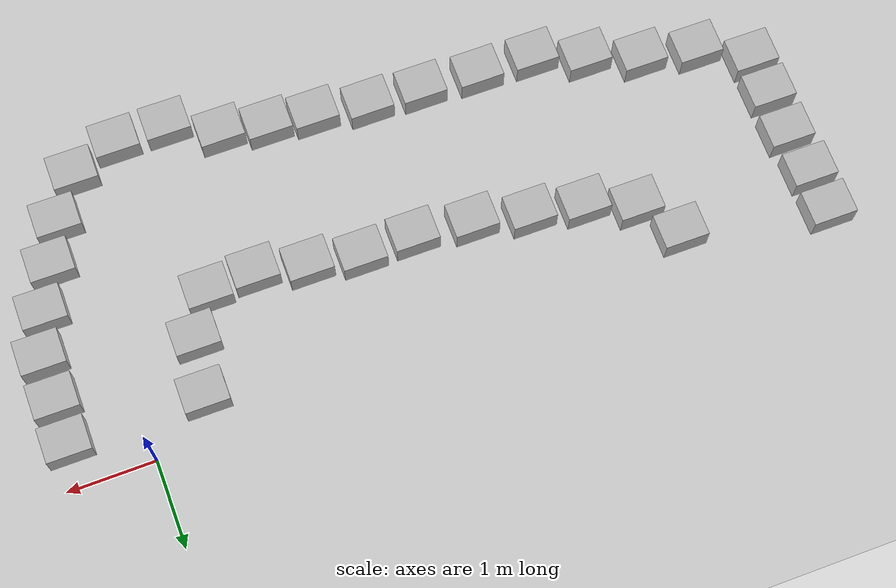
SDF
<sdf version="1.10">
 <world name="empty">
  <model name="ground_plane">
   <static>true</static>
   <link name="link">
    <collision name="collision">
     <geometry><plane><normal>0 0 1</normal><size>100 100</size></plane></geometry>
    </collision>
    <visual name="visual">
     <geometry><plane><normal>0 0 1</normal><size>100 100</size></plane></geometry>
     <material>
      <ambient>0.800000012 0.800000012 0.800000012 1</ambient>
      <diffuse>0.800000012 0.800000012 0.800000012 1</diffuse>
      <specular>0.800000012 0.800000012 0.800000012 1</specular>
     </material>
    </visual>
    <inertial>
     <mass>1</mass>
     <inertia><ixx>1</ixx><ixy>0</ixy><ixz>0</ixz><iyy>1</iyy><iyz>0</iyz><izz>1</izz></inertia>
    </inertial>
   </link>
  </model>
  <model name="cardboard_box_2">
   <pose>0.82918823358013261 -0.48284581720282427 0.14999943526777965 1.468051330599653e-18 -4.7075442468869343e-19 -1.1483520386083747e-20</pose>
   <link name="link">
    <inertial>
     <mass>2</mass>
     <inertia>
      <ixx>0.041666666999999998</ixx>
      <ixy>0</ixy>
      <ixz>0</ixz>
      <iyy>0.056666666999999997</iyy>
      <iyz>0</iyz>
      <izz>0.068333332999999996</izz>
     </inertia>
    </inertial>
    <collision name="collision">
     <geometry><box><size>0.5 0.40000000000000002 0.29999999999999999</size></box></geometry>
     <surface>
      <friction><ode><mu>1</mu><mu2>1</mu2></ode></friction>
      <contact>
       <ode><kp>10000000</kp><kd>1</kd><min_depth>0.001</min_depth><max_vel>0.10000000000000001</max_vel></ode>
      </contact>
     </surface>
    </collision>
    <visual name="visual">
     <pose>0 0 -0.14999999999999999 0 0 0</pose>
     <geometry>
      <mesh>
       <uri>file:///home/szu/slash_ws/src/slash_sim/gz_models/cardboard_box/model://cardboard_box/meshes/cardboard_box.dae</uri>
       <scale>1.2593189600000001 1.0074551679999999 0.75559137600000004</scale>
      </mesh>
     </geometry>
    </visual>
   </link>
   <static>false</static>
  </model>
  <model name="cardboard_box_1">
   <pose>0.81471989938882383 -0.97593307698761844 0.14999900262897667 -2.4340092493284308e-19 6.9279252550571232e-19 1.2027156982183783e-19</pose>
   <link name="link">
    <inertial>
     <mass>2</mass>
     <inertia>
      <ixx>0.041666666999999998</ixx>
      <ixy>0</ixy>
      <ixz>0</ixz>
      <iyy>0.056666666999999997</iyy>
      <iyz>0</iyz>
      <izz>0.068333332999999996</izz>
     </inertia>
    </inertial>
    <collision name="collision">
     <geometry><box><size>0.5 0.40000000000000002 0.29999999999999999</size></box></geometry>
     <surface>
      <friction><ode><mu>1</mu><mu2>1</mu2></ode></friction>
      <contact>
       <ode><kp>10000000</kp><kd>1</kd><min_depth>0.001</min_depth><max_vel>0.10000000000000001</max_vel></ode>
      </contact>
     </surface>
    </collision>
    <visual name="visual">
     <pose>0 0 -0.14999999999999999 0 0 0</pose>
     <geometry>
      <mesh>
       <uri>file:///home/szu/slash_ws/src/slash_sim/gz_models/cardboard_box/model://cardboard_box/meshes/cardboard_box.dae</uri>
       <scale>1.2593189600000001 1.0074551679999999 0.75559137600000004</scale>
      </mesh>
     </geometry>
    </visual>
   </link>
   <static>false</static>
  </model>
  <model name="cardboard_box_3">
   <pose>0.80992011127847019 -1.4853921208673166 0.14999900262897667 -2.4340092493284308e-19 6.9279252550571232e-19 1.2027156982183783e-19</pose>
   <link name="link">
    <inertial>
     <mass>2</mass>
     <inertia>
      <ixx>0.041666666999999998</ixx>
      <ixy>0</ixy>
      <ixz>0</ixz>
      <iyy>0.056666666999999997</iyy>
      <iyz>0</iyz>
      <izz>0.068333332999999996</izz>
     </inertia>
    </inertial>
    <collision name="collision">
     <geometry><box><size>0.5 0.40000000000000002 0.29999999999999999</size></box></geometry>
     <surface>
      <friction><ode><mu>1</mu><mu2>1</mu2></ode></friction>
      <contact>
       <ode><kp>10000000</kp><kd>1</kd><min_depth>0.001</min_depth><max_vel>0.10000000000000001</max_vel></ode>
      </contact>
     </surface>
    </collision>
    <visual name="visual">
     <pose>0 0 -0.14999999999999999 0 0 0</pose>
     <geometry>
      <mesh>
       <uri>file:///home/szu/slash_ws/src/slash_sim/gz_models/cardboard_box/model://cardboard_box/meshes/cardboard_box.dae</uri>
       <scale>1.2593189600000001 1.0074551679999999 0.75559137600000004</scale>
      </mesh>
     </geometry>
    </visual>
   </link>
   <static>false</static>
  </model>
  <model name="cardboard_box_4">
   <pose>0.65241971092314321 -1.9664045753572796 0.14999900262897667 -2.4340092493284308e-19 6.9279252550571232e-19 1.2027156982183783e-19</pose>
   <link name="link">
    <inertial>
     <mass>2</mass>
     <inertia>
      <ixx>0.041666666999999998</ixx>
      <ixy>0</ixy>
      <ixz>0</ixz>
      <iyy>0.056666666999999997</iyy>
      <iyz>0</iyz>
      <izz>0.068333332999999996</izz>
     </inertia>
    </inertial>
    <collision name="collision">
     <geometry><box><size>0.5 0.40000000000000002 0.29999999999999999</size></box></geometry>
     <surface>
      <friction><ode><mu>1</mu><mu2>1</mu2></ode></friction>
      <contact>
       <ode><kp>10000000</kp><kd>1</kd><min_depth>0.001</min_depth><max_vel>0.10000000000000001</max_vel></ode>
      </contact>
     </surface>
    </collision>
    <visual name="visual">
     <pose>0 0 -0.14999999999999999 0 0 0</pose>
     <geometry>
      <mesh>
       <uri>file:///home/szu/slash_ws/src/slash_sim/gz_models/cardboard_box/model://cardboard_box/meshes/cardboard_box.dae</uri>
       <scale>1.2593189600000001 1.0074551679999999 0.75559137600000004</scale>
      </mesh>
     </geometry>
    </visual>
   </link>
   <static>false</static>
  </model>
  <model name="cardboard_box_5">
   <pose>0.42300615484042769 -2.4551073116075139 0.14999900262897667 -2.3882218747492828e-19 7.0060126461846494e-19 1.2009065340730555e-19</pose>
   <link name="link">
    <inertial>
     <mass>2</mass>
     <inertia>
      <ixx>0.041666666999999998</ixx>
      <ixy>0</ixy>
      <ixz>0</ixz>
      <iyy>0.056666666999999997</iyy>
      <iyz>0</iyz>
      <izz>0.068333332999999996</izz>
     </inertia>
    </inertial>
    <collision name="collision">
     <geometry><box><size>0.5 0.40000000000000002 0.29999999999999999</size></box></geometry>
     <surface>
      <friction><ode><mu>1</mu><mu2>1</mu2></ode></friction>
      <contact>
       <ode><kp>10000000</kp><kd>1</kd><min_depth>0.001</min_depth><max_vel>0.10000000000000001</max_vel></ode>
      </contact>
     </surface>
    </collision>
    <visual name="visual">
     <pose>0 0 -0.14999999999999999 0 0 0</pose>
     <geometry>
      <mesh>
       <uri>file:///home/szu/slash_ws/src/slash_sim/gz_models/cardboard_box/model://cardboard_box/meshes/cardboard_box.dae</uri>
       <scale>1.2593189600000001 1.0074551679999999 0.75559137600000004</scale>
      </mesh>
     </geometry>
    </visual>
   </link>
   <static>false</static>
  </model>
  <model name="cardboard_box_6">
   <pose>0.21282287062685212 -2.925903574118673 0.14999900262897667 -2.3882218747492828e-19 7.0060126461846494e-19 1.2009065340730555e-19</pose>
   <link name="link">
    <inertial>
     <mass>2</mass>
     <inertia>
      <ixx>0.041666666999999998</ixx>
      <ixy>0</ixy>
      <ixz>0</ixz>
      <iyy>0.056666666999999997</iyy>
      <iyz>0</iyz>
      <izz>0.068333332999999996</izz>
     </inertia>
    </inertial>
    <collision name="collision">
     <geometry><box><size>0.5 0.40000000000000002 0.29999999999999999</size></box></geometry>
     <surface>
      <friction><ode><mu>1</mu><mu2>1</mu2></ode></friction>
      <contact>
       <ode><kp>10000000</kp><kd>1</kd><min_depth>0.001</min_depth><max_vel>0.10000000000000001</max_vel></ode>
      </contact>
     </surface>
    </collision>
    <visual name="visual">
     <pose>0 0 -0.14999999999999999 0 0 0</pose>
     <geometry>
      <mesh>
       <uri>file:///home/szu/slash_ws/src/slash_sim/gz_models/cardboard_box/model://cardboard_box/meshes/cardboard_box.dae</uri>
       <scale>1.2593189600000001 1.0074551679999999 0.75559137600000004</scale>
      </mesh>
     </geometry>
    </visual>
   </link>
   <static>false</static>
  </model>
  <model name="cardboard_box_7">
   <pose>-0.11863343668581763 -3.3982007797930551 0.14999900262897667 -2.4848020336017288e-19 6.8408961370786333e-19 1.2063749059190658e-19</pose>
   <link name="link">
    <inertial>
     <mass>2</mass>
     <inertia>
      <ixx>0.041666666999999998</ixx>
      <ixy>0</ixy>
      <ixz>0</ixz>
      <iyy>0.056666666999999997</iyy>
      <iyz>0</iyz>
      <izz>0.068333332999999996</izz>
     </inertia>
    </inertial>
    <collision name="collision">
     <geometry><box><size>0.5 0.40000000000000002 0.29999999999999999</size></box></geometry>
     <surface>
      <friction><ode><mu>1</mu><mu2>1</mu2></ode></friction>
      <contact>
       <ode><kp>10000000</kp><kd>1</kd><min_depth>0.001</min_depth><max_vel>0.10000000000000001</max_vel></ode>
      </contact>
     </surface>
    </collision>
    <visual name="visual">
     <pose>0 0 -0.14999999999999999 0 0 0</pose>
     <geometry>
      <mesh>
       <uri>file:///home/szu/slash_ws/src/slash_sim/gz_models/cardboard_box/model://cardboard_box/meshes/cardboard_box.dae</uri>
       <scale>1.2593189600000001 1.0074551679999999 0.75559137600000004</scale>
      </mesh>
     </geometry>
    </visual>
   </link>
   <static>false</static>
  </model>
  <model name="cardboard_box_8">
   <pose>-0.65943831398405628 -3.6029109999164235 0.14999900262897667 -2.3882218747492828e-19 7.0060126461846494e-19 1.2009065340730555e-19</pose>
   <link name="link">
    <inertial>
     <mass>2</mass>
     <inertia>
      <ixx>0.041666666999999998</ixx>
      <ixy>0</ixy>
      <ixz>0</ixz>
      <iyy>0.056666666999999997</iyy>
      <iyz>0</iyz>
      <izz>0.068333332999999996</izz>
     </inertia>
    </inertial>
    <collision name="collision">
     <geometry><box><size>0.5 0.40000000000000002 0.29999999999999999</size></box></geometry>
     <surface>
      <friction><ode><mu>1</mu><mu2>1</mu2></ode></friction>
      <contact>
       <ode><kp>10000000</kp><kd>1</kd><min_depth>0.001</min_depth><max_vel>0.10000000000000001</max_vel></ode>
      </contact>
     </surface>
    </collision>
    <visual name="visual">
     <pose>0 0 -0.14999999999999999 0 0 0</pose>
     <geometry>
      <mesh>
       <uri>file:///home/szu/slash_ws/src/slash_sim/gz_models/cardboard_box/model://cardboard_box/meshes/cardboard_box.dae</uri>
       <scale>1.2593189600000001 1.0074551679999999 0.75559137600000004</scale>
      </mesh>
     </geometry>
    </visual>
   </link>
   <static>false</static>
  </model>
  <model name="cardboard_box_9">
   <pose>-1.2508540111511406 -3.6073572218996501 0.14999900262897667 -2.3882218747492828e-19 7.0060126461846494e-19 1.2009065340730555e-19</pose>
   <link name="link">
    <inertial>
     <mass>2</mass>
     <inertia>
      <ixx>0.041666666999999998</ixx>
      <ixy>0</ixy>
      <ixz>0</ixz>
      <iyy>0.056666666999999997</iyy>
      <iyz>0</iyz>
      <izz>0.068333332999999996</izz>
     </inertia>
    </inertial>
    <collision name="collision">
     <geometry><box><size>0.5 0.40000000000000002 0.29999999999999999</size></box></geometry>
     <surface>
      <friction><ode><mu>1</mu><mu2>1</mu2></ode></friction>
      <contact>
       <ode><kp>10000000</kp><kd>1</kd><min_depth>0.001</min_depth><max_vel>0.10000000000000001</max_vel></ode>
      </contact>
     </surface>
    </collision>
    <visual name="visual">
     <pose>0 0 -0.14999999999999999 0 0 0</pose>
     <geometry>
      <mesh>
       <uri>file:///home/szu/slash_ws/src/slash_sim/gz_models/cardboard_box/model://cardboard_box/meshes/cardboard_box.dae</uri>
       <scale>1.2593189600000001 1.0074551679999999 0.75559137600000004</scale>
      </mesh>
     </geometry>
    </visual>
   </link>
   <static>false</static>
  </model>
  <model name="cardboard_box_10">
   <pose>-1.7887590245711507 -3.3225877841246536 0.14999900262897667 -2.3882218747492828e-19 7.0060126461846494e-19 1.2009065340730555e-19</pose>
   <link name="link">
    <inertial>
     <mass>2</mass>
     <inertia>
      <ixx>0.041666666999999998</ixx>
      <ixy>0</ixy>
      <ixz>0</ixz>
      <iyy>0.056666666999999997</iyy>
      <iyz>0</iyz>
      <izz>0.068333332999999996</izz>
     </inertia>
    </inertial>
    <collision name="collision">
     <geometry><box><size>0.5 0.40000000000000002 0.29999999999999999</size></box></geometry>
     <surface>
      <friction><ode><mu>1</mu><mu2>1</mu2></ode></friction>
      <contact>
       <ode><kp>10000000</kp><kd>1</kd><min_depth>0.001</min_depth><max_vel>0.10000000000000001</max_vel></ode>
      </contact>
     </surface>
    </collision>
    <visual name="visual">
     <pose>0 0 -0.14999999999999999 0 0 0</pose>
     <geometry>
      <mesh>
       <uri>file:///home/szu/slash_ws/src/slash_sim/gz_models/cardboard_box/model://cardboard_box/meshes/cardboard_box.dae</uri>
       <scale>1.2593189600000001 1.0074551679999999 0.75559137600000004</scale>
      </mesh>
     </geometry>
    </visual>
   </link>
   <static>false</static>
  </model>
  <model name="cardboard_box_11">
   <pose>-2.3112200243576413 -3.2260066538424192 0.14999900262897667 -2.3882218747492828e-19 7.0060126461846494e-19 1.2009065340730555e-19</pose>
   <link name="link">
    <inertial>
     <mass>2</mass>
     <inertia>
      <ixx>0.041666666999999998</ixx>
      <ixy>0</ixy>
      <ixz>0</ixz>
      <iyy>0.056666666999999997</iyy>
      <iyz>0</iyz>
      <izz>0.068333332999999996</izz>
     </inertia>
    </inertial>
    <collision name="collision">
     <geometry><box><size>0.5 0.40000000000000002 0.29999999999999999</size></box></geometry>
     <surface>
      <friction><ode><mu>1</mu><mu2>1</mu2></ode></friction>
      <contact>
       <ode><kp>10000000</kp><kd>1</kd><min_depth>0.001</min_depth><max_vel>0.10000000000000001</max_vel></ode>
      </contact>
     </surface>
    </collision>
    <visual name="visual">
     <pose>0 0 -0.14999999999999999 0 0 0</pose>
     <geometry>
      <mesh>
       <uri>file:///home/szu/slash_ws/src/slash_sim/gz_models/cardboard_box/model://cardboard_box/meshes/cardboard_box.dae</uri>
       <scale>1.2593189600000001 1.0074551679999999 0.75559137600000004</scale>
      </mesh>
     </geometry>
    </visual>
   </link>
   <static>false</static>
  </model>
  <model name="cardboard_box_12">
   <pose>-2.8382995273990406 -3.1674697978062643 0.14999900262897667 -2.3882218747492828e-19 7.0060126461846494e-19 1.2009065340730555e-19</pose>
   <link name="link">
    <inertial>
     <mass>2</mass>
     <inertia>
      <ixx>0.041666666999999998</ixx>
      <ixy>0</ixy>
      <ixz>0</ixz>
      <iyy>0.056666666999999997</iyy>
      <iyz>0</iyz>
      <izz>0.068333332999999996</izz>
     </inertia>
    </inertial>
    <collision name="collision">
     <geometry><box><size>0.5 0.40000000000000002 0.29999999999999999</size></box></geometry>
     <surface>
      <friction><ode><mu>1</mu><mu2>1</mu2></ode></friction>
      <contact>
       <ode><kp>10000000</kp><kd>1</kd><min_depth>0.001</min_depth><max_vel>0.10000000000000001</max_vel></ode>
      </contact>
     </surface>
    </collision>
    <visual name="visual">
     <pose>0 0 -0.14999999999999999 0 0 0</pose>
     <geometry>
      <mesh>
       <uri>file:///home/szu/slash_ws/src/slash_sim/gz_models/cardboard_box/model://cardboard_box/meshes/cardboard_box.dae</uri>
       <scale>1.2593189600000001 1.0074551679999999 0.75559137600000004</scale>
      </mesh>
     </geometry>
    </visual>
   </link>
   <static>false</static>
  </model>
  <model name="cardboard_box_13">
   <pose>-3.4479739644392979 -3.0739339302603668 0.14999900262897667 -2.3882218747492828e-19 7.0060126461846494e-19 1.2009065340730555e-19</pose>
   <link name="link">
    <inertial>
     <mass>2</mass>
     <inertia>
      <ixx>0.041666666999999998</ixx>
      <ixy>0</ixy>
      <ixz>0</ixz>
      <iyy>0.056666666999999997</iyy>
      <iyz>0</iyz>
      <izz>0.068333332999999996</izz>
     </inertia>
    </inertial>
    <collision name="collision">
     <geometry><box><size>0.5 0.40000000000000002 0.29999999999999999</size></box></geometry>
     <surface>
      <friction><ode><mu>1</mu><mu2>1</mu2></ode></friction>
      <contact>
       <ode><kp>10000000</kp><kd>1</kd><min_depth>0.001</min_depth><max_vel>0.10000000000000001</max_vel></ode>
      </contact>
     </surface>
    </collision>
    <visual name="visual">
     <pose>0 0 -0.14999999999999999 0 0 0</pose>
     <geometry>
      <mesh>
       <uri>file:///home/szu/slash_ws/src/slash_sim/gz_models/cardboard_box/model://cardboard_box/meshes/cardboard_box.dae</uri>
       <scale>1.2593189600000001 1.0074551679999999 0.75559137600000004</scale>
      </mesh>
     </geometry>
    </visual>
   </link>
   <static>false</static>
  </model>
  <model name="cardboard_box_14">
   <pose>-4.0666289461102183 -3.0440014481805937 0.14999900262897667 -2.3882218747492828e-19 7.0060126461846494e-19 1.2009065340730555e-19</pose>
   <link name="link">
    <inertial>
     <mass>2</mass>
     <inertia>
      <ixx>0.041666666999999998</ixx>
      <ixy>0</ixy>
      <ixz>0</ixz>
      <iyy>0.056666666999999997</iyy>
      <iyz>0</iyz>
      <izz>0.068333332999999996</izz>
     </inertia>
    </inertial>
    <collision name="collision">
     <geometry><box><size>0.5 0.40000000000000002 0.29999999999999999</size></box></geometry>
     <surface>
      <friction><ode><mu>1</mu><mu2>1</mu2></ode></friction>
      <contact>
       <ode><kp>10000000</kp><kd>1</kd><min_depth>0.001</min_depth><max_vel>0.10000000000000001</max_vel></ode>
      </contact>
     </surface>
    </collision>
    <visual name="visual">
     <pose>0 0 -0.14999999999999999 0 0 0</pose>
     <geometry>
      <mesh>
       <uri>file:///home/szu/slash_ws/src/slash_sim/gz_models/cardboard_box/model://cardboard_box/meshes/cardboard_box.dae</uri>
       <scale>1.2593189600000001 1.0074551679999999 0.75559137600000004</scale>
      </mesh>
     </geometry>
    </visual>
   </link>
   <static>false</static>
  </model>
  <model name="cardboard_box_15">
   <pose>-4.7268743832117153 -3.0079390506296462 0.14999900262897667 -2.3882218747492828e-19 7.0060126461846494e-19 1.2009065340730555e-19</pose>
   <link name="link">
    <inertial>
     <mass>2</mass>
     <inertia>
      <ixx>0.041666666999999998</ixx>
      <ixy>0</ixy>
      <ixz>0</ixz>
      <iyy>0.056666666999999997</iyy>
      <iyz>0</iyz>
      <izz>0.068333332999999996</izz>
     </inertia>
    </inertial>
    <collision name="collision">
     <geometry><box><size>0.5 0.40000000000000002 0.29999999999999999</size></box></geometry>
     <surface>
      <friction><ode><mu>1</mu><mu2>1</mu2></ode></friction>
      <contact>
       <ode><kp>10000000</kp><kd>1</kd><min_depth>0.001</min_depth><max_vel>0.10000000000000001</max_vel></ode>
      </contact>
     </surface>
    </collision>
    <visual name="visual">
     <pose>0 0 -0.14999999999999999 0 0 0</pose>
     <geometry>
      <mesh>
       <uri>file:///home/szu/slash_ws/src/slash_sim/gz_models/cardboard_box/model://cardboard_box/meshes/cardboard_box.dae</uri>
       <scale>1.2593189600000001 1.0074551679999999 0.75559137600000004</scale>
      </mesh>
     </geometry>
    </visual>
   </link>
   <static>false</static>
  </model>
  <model name="cardboard_box_16">
   <pose>-5.3803726022670695 -2.9915414197180037 0.14999900262897667 -2.3882218747492828e-19 7.0060126461846494e-19 1.2009065340730555e-19</pose>
   <link name="link">
    <inertial>
     <mass>2</mass>
     <inertia>
      <ixx>0.041666666999999998</ixx>
      <ixy>0</ixy>
      <ixz>0</ixz>
      <iyy>0.056666666999999997</iyy>
      <iyz>0</iyz>
      <izz>0.068333332999999996</izz>
     </inertia>
    </inertial>
    <collision name="collision">
     <geometry><box><size>0.5 0.40000000000000002 0.29999999999999999</size></box></geometry>
     <surface>
      <friction><ode><mu>1</mu><mu2>1</mu2></ode></friction>
      <contact>
       <ode><kp>10000000</kp><kd>1</kd><min_depth>0.001</min_depth><max_vel>0.10000000000000001</max_vel></ode>
      </contact>
     </surface>
    </collision>
    <visual name="visual">
     <pose>0 0 -0.14999999999999999 0 0 0</pose>
     <geometry>
      <mesh>
       <uri>file:///home/szu/slash_ws/src/slash_sim/gz_models/cardboard_box/model://cardboard_box/meshes/cardboard_box.dae</uri>
       <scale>1.2593189600000001 1.0074551679999999 0.75559137600000004</scale>
      </mesh>
     </geometry>
    </visual>
   </link>
   <static>false</static>
  </model>
  <model name="cardboard_box_17">
   <pose>-5.9379788822694248 -2.779304179914567 0.14999900262897667 -2.3882218747492828e-19 7.0060126461846494e-19 1.2009065340730555e-19</pose>
   <link name="link">
    <inertial>
     <mass>2</mass>
     <inertia>
      <ixx>0.041666666999999998</ixx>
      <ixy>0</ixy>
      <ixz>0</ixz>
      <iyy>0.056666666999999997</iyy>
      <iyz>0</iyz>
      <izz>0.068333332999999996</izz>
     </inertia>
    </inertial>
    <collision name="collision">
     <geometry><box><size>0.5 0.40000000000000002 0.29999999999999999</size></box></geometry>
     <surface>
      <friction><ode><mu>1</mu><mu2>1</mu2></ode></friction>
      <contact>
       <ode><kp>10000000</kp><kd>1</kd><min_depth>0.001</min_depth><max_vel>0.10000000000000001</max_vel></ode>
      </contact>
     </surface>
    </collision>
    <visual name="visual">
     <pose>0 0 -0.14999999999999999 0 0 0</pose>
     <geometry>
      <mesh>
       <uri>file:///home/szu/slash_ws/src/slash_sim/gz_models/cardboard_box/model://cardboard_box/meshes/cardboard_box.dae</uri>
       <scale>1.2593189600000001 1.0074551679999999 0.75559137600000004</scale>
      </mesh>
     </geometry>
    </visual>
   </link>
   <static>false</static>
  </model>
  <model name="cardboard_box_18">
   <pose>-6.5225413445512554 -2.5643485998146858 0.14999900262897667 -2.3882218747492828e-19 7.0060126461846494e-19 1.2009065340730555e-19</pose>
   <link name="link">
    <inertial>
     <mass>2</mass>
     <inertia>
      <ixx>0.041666666999999998</ixx>
      <ixy>0</ixy>
      <ixz>0</ixz>
      <iyy>0.056666666999999997</iyy>
      <iyz>0</iyz>
      <izz>0.068333332999999996</izz>
     </inertia>
    </inertial>
    <collision name="collision">
     <geometry><box><size>0.5 0.40000000000000002 0.29999999999999999</size></box></geometry>
     <surface>
      <friction><ode><mu>1</mu><mu2>1</mu2></ode></friction>
      <contact>
       <ode><kp>10000000</kp><kd>1</kd><min_depth>0.001</min_depth><max_vel>0.10000000000000001</max_vel></ode>
      </contact>
     </surface>
    </collision>
    <visual name="visual">
     <pose>0 0 -0.14999999999999999 0 0 0</pose>
     <geometry>
      <mesh>
       <uri>file:///home/szu/slash_ws/src/slash_sim/gz_models/cardboard_box/model://cardboard_box/meshes/cardboard_box.dae</uri>
       <scale>1.2593189600000001 1.0074551679999999 0.75559137600000004</scale>
      </mesh>
     </geometry>
    </visual>
   </link>
   <static>false</static>
  </model>
  <model name="cardboard_box_19">
   <pose>-7.1408973483773224 -2.4413015255535058 0.149999987441674 5.6848285000596318e-13 3.0140203723890403e-08 -4.5919229407915538e-06</pose>
   <link name="link">
    <inertial>
     <mass>2</mass>
     <inertia>
      <ixx>0.041666666999999998</ixx>
      <ixy>0</ixy>
      <ixz>0</ixz>
      <iyy>0.056666666999999997</iyy>
      <iyz>0</iyz>
      <izz>0.068333332999999996</izz>
     </inertia>
    </inertial>
    <collision name="collision">
     <geometry><box><size>0.5 0.40000000000000002 0.29999999999999999</size></box></geometry>
     <surface>
      <friction><ode><mu>1</mu><mu2>1</mu2></ode></friction>
      <contact>
       <ode><kp>10000000</kp><kd>1</kd><min_depth>0.001</min_depth><max_vel>0.10000000000000001</max_vel></ode>
      </contact>
     </surface>
    </collision>
    <visual name="visual">
     <pose>0 0 -0.14999999999999999 0 0 0</pose>
     <geometry>
      <mesh>
       <uri>file:///home/szu/slash_ws/src/slash_sim/gz_models/cardboard_box/model://cardboard_box/meshes/cardboard_box.dae</uri>
       <scale>1.2593189600000001 1.0074551679999999 0.75559137600000004</scale>
      </mesh>
     </geometry>
    </visual>
   </link>
   <static>false</static>
  </model>
  <model name="cardboard_box_21">
   <pose>-7.6931963475884668 -1.662565945218375 0.14999900262897667 -2.4340092493284308e-19 6.9279252550571232e-19 1.2027156982183783e-19</pose>
   <link name="link">
    <inertial>
     <mass>2</mass>
     <inertia>
      <ixx>0.041666666999999998</ixx>
      <ixy>0</ixy>
      <ixz>0</ixz>
      <iyy>0.056666666999999997</iyy>
      <iyz>0</iyz>
      <izz>0.068333332999999996</izz>
     </inertia>
    </inertial>
    <collision name="collision">
     <geometry><box><size>0.5 0.40000000000000002 0.29999999999999999</size></box></geometry>
     <surface>
      <friction><ode><mu>1</mu><mu2>1</mu2></ode></friction>
      <contact>
       <ode><kp>10000000</kp><kd>1</kd><min_depth>0.001</min_depth><max_vel>0.10000000000000001</max_vel></ode>
      </contact>
     </surface>
    </collision>
    <visual name="visual">
     <pose>0 0 -0.14999999999999999 0 0 0</pose>
     <geometry>
      <mesh>
       <uri>file:///home/szu/slash_ws/src/slash_sim/gz_models/cardboard_box/model://cardboard_box/meshes/cardboard_box.dae</uri>
       <scale>1.2593189600000001 1.0074551679999999 0.75559137600000004</scale>
      </mesh>
     </geometry>
    </visual>
   </link>
   <static>false</static>
  </model>
  <model name="cardboard_box_20">
   <pose>-7.6865004889883242 -2.130387934828323 0.14999900262897667 -2.4617464613720411e-19 6.9865286339511872e-19 1.2102648454319885e-19</pose>
   <link name="link">
    <inertial>
     <mass>2</mass>
     <inertia>
      <ixx>0.041666666999999998</ixx>
      <ixy>0</ixy>
      <ixz>0</ixz>
      <iyy>0.056666666999999997</iyy>
      <iyz>0</iyz>
      <izz>0.068333332999999996</izz>
     </inertia>
    </inertial>
    <collision name="collision">
     <geometry><box><size>0.5 0.40000000000000002 0.29999999999999999</size></box></geometry>
     <surface>
      <friction><ode><mu>1</mu><mu2>1</mu2></ode></friction>
      <contact>
       <ode><kp>10000000</kp><kd>1</kd><min_depth>0.001</min_depth><max_vel>0.10000000000000001</max_vel></ode>
      </contact>
     </surface>
    </collision>
    <visual name="visual">
     <pose>0 0 -0.14999999999999999 0 0 0</pose>
     <geometry>
      <mesh>
       <uri>file:///home/szu/slash_ws/src/slash_sim/gz_models/cardboard_box/model://cardboard_box/meshes/cardboard_box.dae</uri>
       <scale>1.2593189600000001 1.0074551679999999 0.75559137600000004</scale>
      </mesh>
     </geometry>
    </visual>
   </link>
   <static>false</static>
  </model>
  <model name="cardboard_box_22">
   <pose>-7.6940470332278661 -1.1493551750067641 0.14999900262897667 -2.4340092493284308e-19 6.9279252550571232e-19 1.2027156982183783e-19</pose>
   <link name="link">
    <inertial>
     <mass>2</mass>
     <inertia>
      <ixx>0.041666666999999998</ixx>
      <ixy>0</ixy>
      <ixz>0</ixz>
      <iyy>0.056666666999999997</iyy>
      <iyz>0</iyz>
      <izz>0.068333332999999996</izz>
     </inertia>
    </inertial>
    <collision name="collision">
     <geometry><box><size>0.5 0.40000000000000002 0.29999999999999999</size></box></geometry>
     <surface>
      <friction><ode><mu>1</mu><mu2>1</mu2></ode></friction>
      <contact>
       <ode><kp>10000000</kp><kd>1</kd><min_depth>0.001</min_depth><max_vel>0.10000000000000001</max_vel></ode>
      </contact>
     </surface>
    </collision>
    <visual name="visual">
     <pose>0 0 -0.14999999999999999 0 0 0</pose>
     <geometry>
      <mesh>
       <uri>file:///home/szu/slash_ws/src/slash_sim/gz_models/cardboard_box/model://cardboard_box/meshes/cardboard_box.dae</uri>
       <scale>1.2593189600000001 1.0074551679999999 0.75559137600000004</scale>
      </mesh>
     </geometry>
    </visual>
   </link>
   <static>false</static>
  </model>
  <model name="cardboard_box_23">
   <pose>-7.7438613160016532 -0.63811395418226091 0.14999900262897667 -2.2431381697928032e-19 6.9715337893438625e-19 1.2058972534000899e-19</pose>
   <link name="link">
    <inertial>
     <mass>2</mass>
     <inertia>
      <ixx>0.041666666999999998</ixx>
      <ixy>0</ixy>
      <ixz>0</ixz>
      <iyy>0.056666666999999997</iyy>
      <iyz>0</iyz>
      <izz>0.068333332999999996</izz>
     </inertia>
    </inertial>
    <collision name="collision">
     <geometry><box><size>0.5 0.40000000000000002 0.29999999999999999</size></box></geometry>
     <surface>
      <friction><ode><mu>1</mu><mu2>1</mu2></ode></friction>
      <contact>
       <ode><kp>10000000</kp><kd>1</kd><min_depth>0.001</min_depth><max_vel>0.10000000000000001</max_vel></ode>
      </contact>
     </surface>
    </collision>
    <visual name="visual">
     <pose>0 0 -0.14999999999999999 0 0 0</pose>
     <geometry>
      <mesh>
       <uri>file:///home/szu/slash_ws/src/slash_sim/gz_models/cardboard_box/model://cardboard_box/meshes/cardboard_box.dae</uri>
       <scale>1.2593189600000001 1.0074551679999999 0.75559137600000004</scale>
      </mesh>
     </geometry>
    </visual>
   </link>
   <static>false</static>
  </model>
  <model name="cardboard_box_24">
   <pose>-7.7540243617888276 -0.15357185266683215 0.14999900262897667 -2.5080923996314153e-19 6.9013454270577445e-19 1.2087524920852755e-19</pose>
   <link name="link">
    <inertial>
     <mass>2</mass>
     <inertia>
      <ixx>0.041666666999999998</ixx>
      <ixy>0</ixy>
      <ixz>0</ixz>
      <iyy>0.056666666999999997</iyy>
      <iyz>0</iyz>
      <izz>0.068333332999999996</izz>
     </inertia>
    </inertial>
    <collision name="collision">
     <geometry><box><size>0.5 0.40000000000000002 0.29999999999999999</size></box></geometry>
     <surface>
      <friction><ode><mu>1</mu><mu2>1</mu2></ode></friction>
      <contact>
       <ode><kp>10000000</kp><kd>1</kd><min_depth>0.001</min_depth><max_vel>0.10000000000000001</max_vel></ode>
      </contact>
     </surface>
    </collision>
    <visual name="visual">
     <pose>0 0 -0.14999999999999999 0 0 0</pose>
     <geometry>
      <mesh>
       <uri>file:///home/szu/slash_ws/src/slash_sim/gz_models/cardboard_box/model://cardboard_box/meshes/cardboard_box.dae</uri>
       <scale>1.2593189600000001 1.0074551679999999 0.75559137600000004</scale>
      </mesh>
     </geometry>
    </visual>
   </link>
   <static>false</static>
  </model>
  <model name="cardboard_box_65">
   <pose>-1.0832247618047814 -1.5861284142807639 0.14999900262897667 -2.4340092493284308e-19 6.9279252550571232e-19 1.2027156982183783e-19</pose>
   <link name="link">
    <inertial>
     <mass>2</mass>
     <inertia>
      <ixx>0.041666666999999998</ixx>
      <ixy>0</ixy>
      <ixz>0</ixz>
      <iyy>0.056666666999999997</iyy>
      <iyz>0</iyz>
      <izz>0.068333332999999996</izz>
     </inertia>
    </inertial>
    <collision name="collision">
     <geometry><box><size>0.5 0.40000000000000002 0.29999999999999999</size></box></geometry>
     <surface>
      <friction><ode><mu>1</mu><mu2>1</mu2></ode></friction>
      <contact>
       <ode><kp>10000000</kp><kd>1</kd><min_depth>0.001</min_depth><max_vel>0.10000000000000001</max_vel></ode>
      </contact>
     </surface>
    </collision>
    <visual name="visual">
     <pose>0 0 -0.14999999999999999 0 0 0</pose>
     <geometry>
      <mesh>
       <uri>file:///home/szu/slash_ws/src/slash_sim/gz_models/cardboard_box/model://cardboard_box/meshes/cardboard_box.dae</uri>
       <scale>1.2593189600000001 1.0074551679999999 0.75559137600000004</scale>
      </mesh>
     </geometry>
    </visual>
   </link>
   <static>false</static>
  </model>
  <model name="cardboard_box_66">
   <pose>-0.79812980446522419 -1.1271150037785205 0.14999900262897667 -2.4653362423667062e-19 6.8699611144558108e-19 1.2050847108334845e-19</pose>
   <link name="link">
    <inertial>
     <mass>2</mass>
     <inertia>
      <ixx>0.041666666999999998</ixx>
      <ixy>0</ixy>
      <ixz>0</ixz>
      <iyy>0.056666666999999997</iyy>
      <iyz>0</iyz>
      <izz>0.068333332999999996</izz>
     </inertia>
    </inertial>
    <collision name="collision">
     <geometry><box><size>0.5 0.40000000000000002 0.29999999999999999</size></box></geometry>
     <surface>
      <friction><ode><mu>1</mu><mu2>1</mu2></ode></friction>
      <contact>
       <ode><kp>10000000</kp><kd>1</kd><min_depth>0.001</min_depth><max_vel>0.10000000000000001</max_vel></ode>
      </contact>
     </surface>
    </collision>
    <visual name="visual">
     <pose>0 0 -0.14999999999999999 0 0 0</pose>
     <geometry>
      <mesh>
       <uri>file:///home/szu/slash_ws/src/slash_sim/gz_models/cardboard_box/model://cardboard_box/meshes/cardboard_box.dae</uri>
       <scale>1.2593189600000001 1.0074551679999999 0.75559137600000004</scale>
      </mesh>
     </geometry>
    </visual>
   </link>
   <static>false</static>
  </model>
  <model name="cardboard_box_67">
   <pose>-0.69316919308377078 -0.4940241088529409 0.14999900262897667 -2.2431381697928032e-19 6.9715337893438625e-19 1.2058972534000899e-19</pose>
   <link name="link">
    <inertial>
     <mass>2</mass>
     <inertia>
      <ixx>0.041666666999999998</ixx>
      <ixy>0</ixy>
      <ixz>0</ixz>
      <iyy>0.056666666999999997</iyy>
      <iyz>0</iyz>
      <izz>0.068333332999999996</izz>
     </inertia>
    </inertial>
    <collision name="collision">
     <geometry><box><size>0.5 0.40000000000000002 0.29999999999999999</size></box></geometry>
     <surface>
      <friction><ode><mu>1</mu><mu2>1</mu2></ode></friction>
      <contact>
       <ode><kp>10000000</kp><kd>1</kd><min_depth>0.001</min_depth><max_vel>0.10000000000000001</max_vel></ode>
      </contact>
     </surface>
    </collision>
    <visual name="visual">
     <pose>0 0 -0.14999999999999999 0 0 0</pose>
     <geometry>
      <mesh>
       <uri>file:///home/szu/slash_ws/src/slash_sim/gz_models/cardboard_box/model://cardboard_box/meshes/cardboard_box.dae</uri>
       <scale>1.2593189600000001 1.0074551679999999 0.75559137600000004</scale>
      </mesh>
     </geometry>
    </visual>
   </link>
   <static>false</static>
  </model>
  <model name="cardboard_box_71">
   <pose>-1.6281309282840284 -1.6266331640017411 0.14999900262897667 -2.4340092493284308e-19 6.9279252550571232e-19 1.2027156982183783e-19</pose>
   <link name="link">
    <inertial>
     <mass>2</mass>
     <inertia>
      <ixx>0.041666666999999998</ixx>
      <ixy>0</ixy>
      <ixz>0</ixz>
      <iyy>0.056666666999999997</iyy>
      <iyz>0</iyz>
      <izz>0.068333332999999996</izz>
     </inertia>
    </inertial>
    <collision name="collision">
     <geometry><box><size>0.5 0.40000000000000002 0.29999999999999999</size></box></geometry>
     <surface>
      <friction><ode><mu>1</mu><mu2>1</mu2></ode></friction>
      <contact>
       <ode><kp>10000000</kp><kd>1</kd><min_depth>0.001</min_depth><max_vel>0.10000000000000001</max_vel></ode>
      </contact>
     </surface>
    </collision>
    <visual name="visual">
     <pose>0 0 -0.14999999999999999 0 0 0</pose>
     <geometry>
      <mesh>
       <uri>file:///home/szu/slash_ws/src/slash_sim/gz_models/cardboard_box/model://cardboard_box/meshes/cardboard_box.dae</uri>
       <scale>1.2593189600000001 1.0074551679999999 0.75559137600000004</scale>
      </mesh>
     </geometry>
    </visual>
   </link>
   <static>false</static>
  </model>
  <model name="cardboard_box_72">
   <pose>-2.2022667893427945 -1.5050838913422591 0.14999900262897667 -2.4340092493284308e-19 6.9279252550571232e-19 1.2027156982183783e-19</pose>
   <link name="link">
    <inertial>
     <mass>2</mass>
     <inertia>
      <ixx>0.041666666999999998</ixx>
      <ixy>0</ixy>
      <ixz>0</ixz>
      <iyy>0.056666666999999997</iyy>
      <iyz>0</iyz>
      <izz>0.068333332999999996</izz>
     </inertia>
    </inertial>
    <collision name="collision">
     <geometry><box><size>0.5 0.40000000000000002 0.29999999999999999</size></box></geometry>
     <surface>
      <friction><ode><mu>1</mu><mu2>1</mu2></ode></friction>
      <contact>
       <ode><kp>10000000</kp><kd>1</kd><min_depth>0.001</min_depth><max_vel>0.10000000000000001</max_vel></ode>
      </contact>
     </surface>
    </collision>
    <visual name="visual">
     <pose>0 0 -0.14999999999999999 0 0 0</pose>
     <geometry>
      <mesh>
       <uri>file:///home/szu/slash_ws/src/slash_sim/gz_models/cardboard_box/model://cardboard_box/meshes/cardboard_box.dae</uri>
       <scale>1.2593189600000001 1.0074551679999999 0.75559137600000004</scale>
      </mesh>
     </geometry>
    </visual>
   </link>
   <static>false</static>
  </model>
  <model name="cardboard_box_73">
   <pose>-2.7819139284588834 -1.415479621435896 0.14999900262897667 -2.4340092493284308e-19 6.9279252550571232e-19 1.2027156982183783e-19</pose>
   <link name="link">
    <inertial>
     <mass>2</mass>
     <inertia>
      <ixx>0.041666666999999998</ixx>
      <ixy>0</ixy>
      <ixz>0</ixz>
      <iyy>0.056666666999999997</iyy>
      <iyz>0</iyz>
      <izz>0.068333332999999996</izz>
     </inertia>
    </inertial>
    <collision name="collision">
     <geometry><box><size>0.5 0.40000000000000002 0.29999999999999999</size></box></geometry>
     <surface>
      <friction><ode><mu>1</mu><mu2>1</mu2></ode></friction>
      <contact>
       <ode><kp>10000000</kp><kd>1</kd><min_depth>0.001</min_depth><max_vel>0.10000000000000001</max_vel></ode>
      </contact>
     </surface>
    </collision>
    <visual name="visual">
     <pose>0 0 -0.14999999999999999 0 0 0</pose>
     <geometry>
      <mesh>
       <uri>file:///home/szu/slash_ws/src/slash_sim/gz_models/cardboard_box/model://cardboard_box/meshes/cardboard_box.dae</uri>
       <scale>1.2593189600000001 1.0074551679999999 0.75559137600000004</scale>
      </mesh>
     </geometry>
    </visual>
   </link>
   <static>false</static>
  </model>
  <model name="cardboard_box_74">
   <pose>-3.3886531971712586 -1.4292868978366102 0.14999900262897667 -2.4340092493284308e-19 6.9279252550571232e-19 1.2027156982183783e-19</pose>
   <link name="link">
    <inertial>
     <mass>2</mass>
     <inertia>
      <ixx>0.041666666999999998</ixx>
      <ixy>0</ixy>
      <ixz>0</ixz>
      <iyy>0.056666666999999997</iyy>
      <iyz>0</iyz>
      <izz>0.068333332999999996</izz>
     </inertia>
    </inertial>
    <collision name="collision">
     <geometry><box><size>0.5 0.40000000000000002 0.29999999999999999</size></box></geometry>
     <surface>
      <friction><ode><mu>1</mu><mu2>1</mu2></ode></friction>
      <contact>
       <ode><kp>10000000</kp><kd>1</kd><min_depth>0.001</min_depth><max_vel>0.10000000000000001</max_vel></ode>
      </contact>
     </surface>
    </collision>
    <visual name="visual">
     <pose>0 0 -0.14999999999999999 0 0 0</pose>
     <geometry>
      <mesh>
       <uri>file:///home/szu/slash_ws/src/slash_sim/gz_models/cardboard_box/model://cardboard_box/meshes/cardboard_box.dae</uri>
       <scale>1.2593189600000001 1.0074551679999999 0.75559137600000004</scale>
      </mesh>
     </geometry>
    </visual>
   </link>
   <static>false</static>
  </model>
  <model name="cardboard_box_75">
   <pose>-4.052521460145087 -1.3588943626619443 0.14999900262897667 -2.4340092493284308e-19 6.9279252550571232e-19 1.2027156982183783e-19</pose>
   <link name="link">
    <inertial>
     <mass>2</mass>
     <inertia>
      <ixx>0.041666666999999998</ixx>
      <ixy>0</ixy>
      <ixz>0</ixz>
      <iyy>0.056666666999999997</iyy>
      <iyz>0</iyz>
      <izz>0.068333332999999996</izz>
     </inertia>
    </inertial>
    <collision name="collision">
     <geometry><box><size>0.5 0.40000000000000002 0.29999999999999999</size></box></geometry>
     <surface>
      <friction><ode><mu>1</mu><mu2>1</mu2></ode></friction>
      <contact>
       <ode><kp>10000000</kp><kd>1</kd><min_depth>0.001</min_depth><max_vel>0.10000000000000001</max_vel></ode>
      </contact>
     </surface>
    </collision>
    <visual name="visual">
     <pose>0 0 -0.14999999999999999 0 0 0</pose>
     <geometry>
      <mesh>
       <uri>file:///home/szu/slash_ws/src/slash_sim/gz_models/cardboard_box/model://cardboard_box/meshes/cardboard_box.dae</uri>
       <scale>1.2593189600000001 1.0074551679999999 0.75559137600000004</scale>
      </mesh>
     </geometry>
    </visual>
   </link>
   <static>false</static>
  </model>
  <model name="cardboard_box_76">
   <pose>-4.674231231279081 -1.2284118644146766 0.14999900262897667 -2.4340092493284308e-19 6.9279252550571232e-19 1.2027156982183783e-19</pose>
   <link name="link">
    <inertial>
     <mass>2</mass>
     <inertia>
      <ixx>0.041666666999999998</ixx>
      <ixy>0</ixy>
      <ixz>0</ixz>
      <iyy>0.056666666999999997</iyy>
      <iyz>0</iyz>
      <izz>0.068333332999999996</izz>
     </inertia>
    </inertial>
    <collision name="collision">
     <geometry><box><size>0.5 0.40000000000000002 0.29999999999999999</size></box></geometry>
     <surface>
      <friction><ode><mu>1</mu><mu2>1</mu2></ode></friction>
      <contact>
       <ode><kp>10000000</kp><kd>1</kd><min_depth>0.001</min_depth><max_vel>0.10000000000000001</max_vel></ode>
      </contact>
     </surface>
    </collision>
    <visual name="visual">
     <pose>0 0 -0.14999999999999999 0 0 0</pose>
     <geometry>
      <mesh>
       <uri>file:///home/szu/slash_ws/src/slash_sim/gz_models/cardboard_box/model://cardboard_box/meshes/cardboard_box.dae</uri>
       <scale>1.2593189600000001 1.0074551679999999 0.75559137600000004</scale>
      </mesh>
     </geometry>
    </visual>
   </link>
   <static>false</static>
  </model>
  <model name="cardboard_box_77">
   <pose>-5.270682964084096 -1.1300836511170411 0.14999900262897667 -2.4340092493284308e-19 6.9279252550571232e-19 1.2027156982183783e-19</pose>
   <link name="link">
    <inertial>
     <mass>2</mass>
     <inertia>
      <ixx>0.041666666999999998</ixx>
      <ixy>0</ixy>
      <ixz>0</ixz>
      <iyy>0.056666666999999997</iyy>
      <iyz>0</iyz>
      <izz>0.068333332999999996</izz>
     </inertia>
    </inertial>
    <collision name="collision">
     <geometry><box><size>0.5 0.40000000000000002 0.29999999999999999</size></box></geometry>
     <surface>
      <friction><ode><mu>1</mu><mu2>1</mu2></ode></friction>
      <contact>
       <ode><kp>10000000</kp><kd>1</kd><min_depth>0.001</min_depth><max_vel>0.10000000000000001</max_vel></ode>
      </contact>
     </surface>
    </collision>
    <visual name="visual">
     <pose>0 0 -0.14999999999999999 0 0 0</pose>
     <geometry>
      <mesh>
       <uri>file:///home/szu/slash_ws/src/slash_sim/gz_models/cardboard_box/model://cardboard_box/meshes/cardboard_box.dae</uri>
       <scale>1.2593189600000001 1.0074551679999999 0.75559137600000004</scale>
      </mesh>
     </geometry>
    </visual>
   </link>
   <static>false</static>
  </model>
  <model name="cardboard_box_78">
   <pose>-5.8095232028888057 -0.92094030841591534 0.14999900262897667 -2.4340092493284308e-19 6.9279252550571232e-19 1.2027156982183783e-19</pose>
   <link name="link">
    <inertial>
     <mass>2</mass>
     <inertia>
      <ixx>0.041666666999999998</ixx>
      <ixy>0</ixy>
      <ixz>0</ixz>
      <iyy>0.056666666999999997</iyy>
      <iyz>0</iyz>
      <izz>0.068333332999999996</izz>
     </inertia>
    </inertial>
    <collision name="collision">
     <geometry><box><size>0.5 0.40000000000000002 0.29999999999999999</size></box></geometry>
     <surface>
      <friction><ode><mu>1</mu><mu2>1</mu2></ode></friction>
      <contact>
       <ode><kp>10000000</kp><kd>1</kd><min_depth>0.001</min_depth><max_vel>0.10000000000000001</max_vel></ode>
      </contact>
     </surface>
    </collision>
    <visual name="visual">
     <pose>0 0 -0.14999999999999999 0 0 0</pose>
     <geometry>
      <mesh>
       <uri>file:///home/szu/slash_ws/src/slash_sim/gz_models/cardboard_box/model://cardboard_box/meshes/cardboard_box.dae</uri>
       <scale>1.2593189600000001 1.0074551679999999 0.75559137600000004</scale>
      </mesh>
     </geometry>
    </visual>
   </link>
   <static>false</static>
  </model>
  <model name="cardboard_box_79">
   <pose>-6.1365616330642778 -0.46099259367620515 0.14999900262897667 -2.2431381697928032e-19 6.9715337893438625e-19 1.2058972534000899e-19</pose>
   <link name="link">
    <inertial>
     <mass>2</mass>
     <inertia>
      <ixx>0.041666666999999998</ixx>
      <ixy>0</ixy>
      <ixz>0</ixz>
      <iyy>0.056666666999999997</iyy>
      <iyz>0</iyz>
      <izz>0.068333332999999996</izz>
     </inertia>
    </inertial>
    <collision name="collision">
     <geometry><box><size>0.5 0.40000000000000002 0.29999999999999999</size></box></geometry>
     <surface>
      <friction><ode><mu>1</mu><mu2>1</mu2></ode></friction>
      <contact>
       <ode><kp>10000000</kp><kd>1</kd><min_depth>0.001</min_depth><max_vel>0.10000000000000001</max_vel></ode>
      </contact>
     </surface>
    </collision>
    <visual name="visual">
     <pose>0 0 -0.14999999999999999 0 0 0</pose>
     <geometry>
      <mesh>
       <uri>file:///home/szu/slash_ws/src/slash_sim/gz_models/cardboard_box/model://cardboard_box/meshes/cardboard_box.dae</uri>
       <scale>1.2593189600000001 1.0074551679999999 0.75559137600000004</scale>
      </mesh>
     </geometry>
    </visual>
   </link>
   <static>false</static>
  </model>
 </world>
</sdf>
